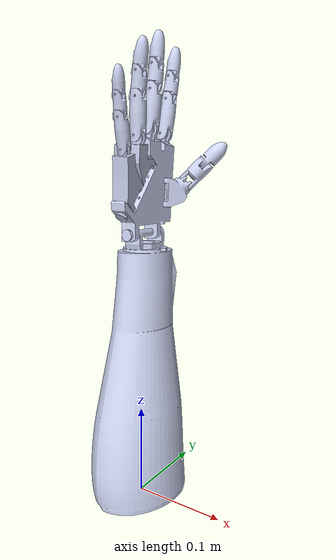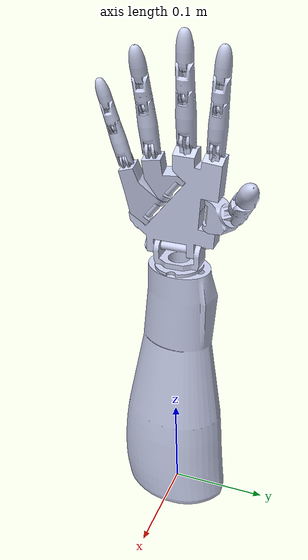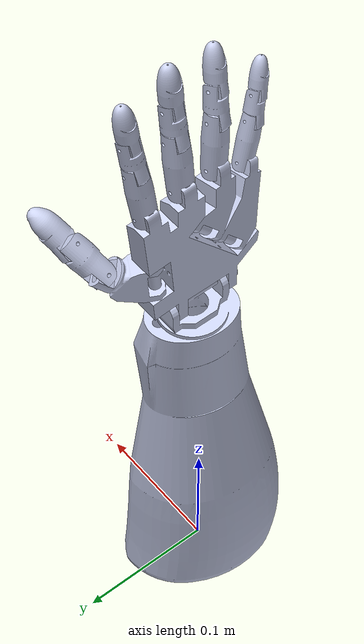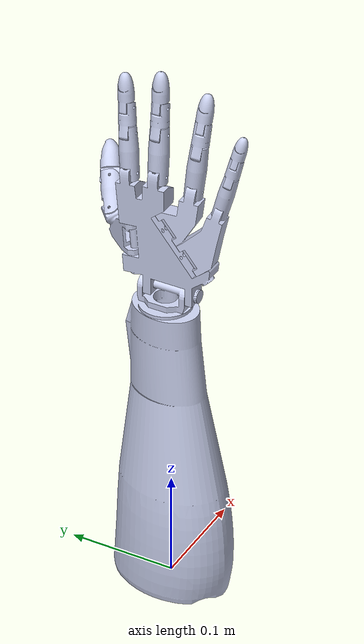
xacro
<?xml version="1.0" encoding="utf-8"?>
<robot name="smart_arm" xmlns:xacro="http://www.ros.org/wiki/xacro" >

  <link name="elbow_link">
    <inertial>
      <origin
        xyz="-0.000205770640037656 0.000108385036079905 0.103139863094332"
        rpy="0 0 0" />
      <mass
        value="0.295493853268353" />
      <inertia
        ixx="0.000483065500673909"
        ixy="-3.31332778426896E-05"
        ixz="-7.20159423734281E-07"
        iyy="0.0003469525375019"
        iyz="-3.22980553305975E-06"
        izz="0.000501419614441105" />
    </inertial>
    <visual>
      <origin
        xyz="0 0 0"
        rpy="0 0 0" />
      <geometry>
        <mesh
          filename="package://smart_arm_description/meshes/elbow_link.STL" />
      </geometry>
      <material
        name="">
        <color
          rgba="0.792156862745098 0.819607843137255 0.933333333333333 1" />
      </material>
    </visual>
    <collision>
      <origin
        xyz="0 0 0"
        rpy="0 0 0" />
      <geometry>
        <mesh
          filename="package://smart_arm_description/meshes/elbow_link.STL" />
      </geometry>
    </collision>
  </link>

  <link  name="wrist_link">
    <inertial>
      <origin
        xyz="-0.000107664352745035 -0.014691017881254 0.0475352652097448"
        rpy="0 0 0" />
      <mass
        value="0.0703349976668528" />
      <inertia
        ixx="8.33145956878074E-05"
        ixy="7.39496138280138E-08"
        ixz="3.04356429676113E-07"
        iyy="5.95941312686552E-05"
        iyz="-1.95191463116659E-05"
        izz="2.69797202551765E-05" />
    </inertial>
    <visual>
      <origin
        xyz="0 0 0"
        rpy="0 0 0" />
      <geometry>
        <mesh
          filename="package://smart_arm_description/meshes/wrist_link.STL" />
      </geometry>
      <material
        name="">
        <color
          rgba="0.792156862745098 0.819607843137255 0.933333333333333 1" />
      </material>
    </visual>
    <collision>
      <origin
        xyz="0 0 0"
        rpy="0 0 0" />
      <geometry>
        <mesh
          filename="package://smart_arm_description/meshes/wrist_link.STL" />
      </geometry>
    </collision>
  </link>

  <link name="wrist_lower_link">
    <inertial>
      <origin
        xyz="-0.0308791426702174 0.00349683553043886 0.0203486593271935"
        rpy="0 0 0" />
      <mass
        value="0.0179601480402659" />
      <inertia
        ixx="3.35618082767684E-06"
        ixy="2.00012150714684E-07"
        ixz="1.29580489766705E-06"
        iyy="4.56681598704689E-06"
        iyz="-3.93596882945118E-07"
        izz="2.21180778937816E-06" />
    </inertial>
    <visual>
      <origin
        xyz="0 0 0"
        rpy="0 0 0" />
      <geometry>
        <mesh
          filename="package://smart_arm_description/meshes/wrist_lower_link.STL" />
      </geometry>
      <material
        name="">
        <color
          rgba="0.792156862745098 0.819607843137255 0.933333333333333 1" />
      </material>
    </visual>
    <collision>
      <origin
        xyz="0 0 0"
        rpy="0 0 0" />
      <geometry>
        <mesh
          filename="package://smart_arm_description/meshes/wrist_lower_link.STL" />
      </geometry>
    </collision>
  </link>

  <link name="pinky_1_link">
    <inertial>
      <origin
        xyz="-0.00522866781159657 -0.0149787954896174 0.00244494110809049"
        rpy="0 0 0" />
      <mass
        value="0.00269063416432976" />
      <inertia
        ixx="1.20242598540253E-07"
        ixy="6.14041884687285E-12"
        ixz="5.8215008319749E-11"
        iyy="8.94283979714206E-08"
        iyz="7.05706982971785E-09"
        izz="1.37183208246673E-07" />
    </inertial>
    <visual>
      <origin
        xyz="0 0 0"
        rpy="0 0 0" />
      <geometry>
        <mesh
          filename="package://smart_arm_description/meshes/pinky_1_link.STL" />
      </geometry>
      <material
        name="">
        <color
          rgba="0.792156862745098 0.819607843137255 0.933333333333333 1" />
      </material>
    </visual>
    <collision>
      <origin
        xyz="0 0 0"
        rpy="0 0 0" />
      <geometry>
        <mesh
          filename="package://smart_arm_description/meshes/pinky_1_link.STL" />
      </geometry>
    </collision>
  </link>

  <link name="pinky_2_link">
    <inertial>
      <origin
        xyz="-0.00512598077996924 0.00901128431388447 -0.000581173891856732"
        rpy="0 0 0" />
      <mass
        value="0.00171948798725875" />
      <inertia
        ixx="4.38399098177655E-08"
        ixy="5.73443666856809E-10"
        ixz="-1.02208225680834E-10"
        iyy="3.88616206091108E-08"
        iyz="4.09208074266455E-09"
        izz="4.31403255685011E-08" />
    </inertial>
    <visual>
      <origin
        xyz="0 0 0"
        rpy="0 0 0" />
      <geometry>
        <mesh
          filename="package://smart_arm_description/meshes/pinky_2_link.STL" />
      </geometry>
      <material
        name="">
        <color
          rgba="0.792156862745098 0.819607843137255 0.933333333333333 1" />
      </material>
    </visual>
    <collision>
      <origin
        xyz="0 0 0"
        rpy="0 0 0" />
      <geometry>
        <mesh
          filename="package://smart_arm_description/meshes/pinky_2_link.STL" />
      </geometry>
    </collision>
  </link>

  <link name="pinky_3_link">
    <inertial>
      <origin
        xyz="-0.00433667543015367 0.0081019823699609 -0.00505664472792688"
        rpy="0 0 0" />
      <mass
        value="0.00142350343627245" />
      <inertia
        ixx="3.38966058052191E-08"
        ixy="-4.50552956352627E-12"
        ixz="1.68997250065103E-11"
        iyy="2.9028388995604E-08"
        iyz="4.53049886719614E-09"
        izz="2.81288327170812E-08" />
    </inertial>
    <visual>
      <origin
        xyz="0 0 0"
        rpy="0 0 0" />
      <geometry>
        <mesh
          filename="package://smart_arm_description/meshes/pinky_3_link.STL" />
      </geometry>
      <material
        name="">
        <color
          rgba="0.792156862745098 0.819607843137255 0.933333333333333 1" />
      </material>
    </visual>
    <collision>
      <origin
        xyz="0 0 0"
        rpy="0 0 0" />
      <geometry>
        <mesh
          filename="package://smart_arm_description/meshes/pinky_3_link.STL" />
      </geometry>
    </collision>
  </link>

  <link name="wrist_middle_link">
    <inertial>
      <origin
        xyz="-0.059351810470969 0.00297685937771368 0.0174911833138776"
        rpy="0 0 0" />
      <mass
        value="0.0133231625794088" />
      <inertia
        ixx="1.92896908777582E-06"
        ixy="7.95493573698368E-08"
        ixz="5.23952379047857E-07"
        iyy="2.50637427994164E-06"
        iyz="-1.97278566939604E-07"
        izz="1.29114139991389E-06" />
    </inertial>
    <visual>
      <origin
        xyz="0 0 0"
        rpy="0 0 0" />
      <geometry>
        <mesh
          filename="package://smart_arm_description/meshes/wrist_middle_link.STL" />
      </geometry>
      <material
        name="">
        <color
          rgba="0.792156862745098 0.819607843137255 0.933333333333333 1" />
      </material>
    </visual>
    <collision>
      <origin
        xyz="0 0 0"
        rpy="0 0 0" />
      <geometry>
        <mesh
          filename="package://smart_arm_description/meshes/wrist_middle_link.STL" />
      </geometry>
    </collision>
  </link>

  <link name="ring_1_link">
    <inertial>
      <origin
        xyz="-0.0062731487203958 0.0178677991712861 -0.00350735852997959"
        rpy="0 0 0" />
      <mass
        value="0.00464662723898721" />
      <inertia
        ixx="2.9890299993066E-07"
        ixy="-1.98178385884489E-11"
        ixz="-1.44064397803553E-10"
        iyy="2.23548899653077E-07"
        iyz="2.13065720147208E-08"
        izz="3.39770028839746E-07" />
    </inertial>
    <visual>
      <origin
        xyz="0 0 0"
        rpy="0 0 0" />
      <geometry>
        <mesh
          filename="package://smart_arm_description/meshes/ring_1_link.STL" />
      </geometry>
      <material
        name="">
        <color
          rgba="0.792156862745098 0.819607843137255 0.933333333333333 1" />
      </material>
    </visual>
    <collision>
      <origin
        xyz="0 0 0"
        rpy="0 0 0" />
      <geometry>
        <mesh
          filename="package://smart_arm_description/meshes/ring_1_link.STL" />
      </geometry>
    </collision>
  </link>

  <link name="ring_2_link">
    <inertial>
      <origin
        xyz="-0.00599442209155701 0.0109099257977444 -0.000450484446247124"
        rpy="0 0 0" />
      <mass
        value="0.00296941783525498" />
      <inertia
        ixx="1.09028461614364E-07"
        ixy="4.53930271304141E-12"
        ixz="-4.29160978497908E-12"
        iyy="9.46598294680744E-08"
        iyz="9.00687858749085E-09"
        izz="1.09127096165152E-07" />
    </inertial>
    <visual>
      <origin
        xyz="0 0 0"
        rpy="0 0 0" />
      <geometry>
        <mesh
          filename="package://smart_arm_description/meshes/ring_2_link.STL" />
      </geometry>
      <material
        name="">
        <color
          rgba="0.792156862745098 0.819607843137255 0.933333333333333 1" />
      </material>
    </visual>
    <collision>
      <origin
        xyz="0 0 0"
        rpy="0 0 0" />
      <geometry>
        <mesh
          filename="package://smart_arm_description/meshes/ring_2_link.STL" />
      </geometry>
    </collision>
  </link>

  <link name="ring_3_link">
    <inertial>
      <origin
        xyz="-0.00520292510737917 0.0114659419405466 -0.000387345885786594"
        rpy="0 0 0" />
      <mass
        value="0.0024583065139303" />
      <inertia
        ixx="8.42582776799548E-08"
        ixy="-3.12990012358554E-11"
        ixz="3.0662688306369E-11"
        iyy="6.18419461954836E-08"
        iyz="6.59258772398117E-09"
        izz="8.02378471172367E-08" />
    </inertial>
    <visual>
      <origin
        xyz="0 0 0"
        rpy="0 0 0" />
      <geometry>
        <mesh
          filename="package://smart_arm_description/meshes/ring_3_link.STL" />
      </geometry>
      <material
        name="">
        <color
          rgba="0.792156862745098 0.819607843137255 0.933333333333333 1" />
      </material>
    </visual>
    <collision>
      <origin
        xyz="0 0 0"
        rpy="0 0 0" />
      <geometry>
        <mesh
          filename="package://smart_arm_description/meshes/ring_3_link.STL" />
      </geometry>
    </collision>
  </link>

  <link name="wrist_upper_link">
    <inertial>
      <origin
        xyz="-0.0366550772980235 0.00764946692547766 -0.0140269197547968"
        rpy="0 0 0" />
      <mass
        value="0.0103243269131143" />
      <inertia
        ixx="7.48338998818573E-07"
        ixy="-4.20182846150398E-08"
        ixz="6.08546051037344E-08"
        iyy="1.06628115984118E-06"
        iyz="6.39209500929198E-08"
        izz="9.79175522091434E-07" />
    </inertial>
    <visual>
      <origin
        xyz="0 0 0"
        rpy="0 0 0" />
      <geometry>
        <mesh
          filename="package://smart_arm_description/meshes/wrist_upper_link.STL" />
      </geometry>
      <material
        name="">
        <color
          rgba="0.792156862745098 0.819607843137255 0.933333333333333 1" />
      </material>
    </visual>
    <collision>
      <origin
        xyz="0 0 0"
        rpy="0 0 0" />
      <geometry>
        <mesh
          filename="package://smart_arm_description/meshes/wrist_upper_link.STL" />
      </geometry>
    </collision>
  </link>

  <link  name="thumb_1_link">
    <inertial>
      <origin
        xyz="-0.00733195290859857 0.0123357237864767 0.0124289912891914"
        rpy="0 0 0" />
      <mass
        value="0.00578742546735096" />
      <inertia
        ixx="2.9022059126798E-07"
        ixy="-9.85448053363409E-14"
        ixz="-4.41249917228209E-13"
        iyy="3.54248074807296E-07"
        iyz="-1.93352692370391E-08"
        izz="3.54050996721444E-07" />
    </inertial>
    <visual>
      <origin
        xyz="0 0 0"
        rpy="0 0 0" />
      <geometry>
        <mesh
          filename="package://smart_arm_description/meshes/thumb_1_link.STL" />
      </geometry>
      <material
        name="">
        <color
          rgba="0.792156862745098 0.819607843137255 0.933333333333333 1" />
      </material>
    </visual>
    <collision>
      <origin
        xyz="0 0 0"
        rpy="0 0 0" />
      <geometry>
        <mesh
          filename="package://smart_arm_description/meshes/thumb_1_link.STL" />
      </geometry>
    </collision>
  </link>

  <link  name="thumb_2_link">
    <inertial>
      <origin
        xyz="-0.0064568457068869 0.0102775150349664 0.00846428836658635"
        rpy="0 0 0" />
      <mass
        value="0.00408607534767685" />
      <inertia
        ixx="1.95951404716398E-07"
        ixy="-7.73858676630385E-11"
        ixz="1.1896278633326E-10"
        iyy="1.85983967135428E-07"
        iyz="-8.26602224548752E-09"
        izz="1.61404176202361E-07" />
    </inertial>
    <visual>
      <origin
        xyz="0 0 0"
        rpy="0 0 0" />
      <geometry>
        <mesh
          filename="package://smart_arm_description/meshes/thumb_2_link.STL" />
      </geometry>
      <material
        name="">
        <color
          rgba="0.792156862745098 0.819607843137255 0.933333333333333 1" />
      </material>
    </visual>
    <collision>
      <origin
        xyz="0 0 0"
        rpy="0 0 0" />
      <geometry>
        <mesh
          filename="package://smart_arm_description/meshes/thumb_2_link.STL" />
      </geometry>
    </collision>
  </link>

  <link name="middle_1_link">
    <inertial>
      <origin
        xyz="-0.00703243450935939 0.0173092705097653 -0.00798548069738481"
        rpy="0 0 0" />
      <mass
        value="0.00545625911917495" />
      <inertia
        ixx="3.90612953769099E-07"
        ixy="1.77980873893174E-09"
        ixz="-1.58816562130274E-09"
        iyy="3.1304155537832E-07"
        iyz="5.91881896575937E-08"
        izz="4.23235427455386E-07" />
    </inertial>
    <visual>
      <origin
        xyz="0 0 0"
        rpy="0 0 0" />
      <geometry>
        <mesh
          filename="package://smart_arm_description/meshes/middle_1_link.STL" />
      </geometry>
      <material
        name="">
        <color
          rgba="0.792156862745098 0.819607843137255 0.933333333333333 1" />
      </material>
    </visual>
    <collision>
      <origin
        xyz="0 0 0"
        rpy="0 0 0" />
      <geometry>
        <mesh
          filename="package://smart_arm_description/meshes/middle_1_link.STL" />
      </geometry>
    </collision>
  </link>

  <link name="middle_2_link">
    <inertial>
      <origin
        xyz="-0.00632415038644278 0.0115147576834888 -0.000333232809120232"
        rpy="0 0 0" />
      <mass
        value="0.00348681254392789" />
      <inertia
        ixx="1.42495803409043E-07"
        ixy="6.42083738917761E-12"
        ixz="-5.66128771526002E-12"
        iyy="1.23428871201468E-07"
        iyz="1.15346629665482E-08"
        izz="1.42912538138573E-07" />
    </inertial>
    <visual>
      <origin
        xyz="0 0 0"
        rpy="0 0 0" />
      <geometry>
        <mesh
          filename="package://smart_arm_description/meshes/middle_2_link.STL" />
      </geometry>
      <material
        name="">
        <color
          rgba="0.792156862745098 0.819607843137255 0.933333333333333 1" />
      </material>
    </visual>
    <collision>
      <origin
        xyz="0 0 0"
        rpy="0 0 0" />
      <geometry>
        <mesh
          filename="package://smart_arm_description/meshes/middle_2_link.STL" />
      </geometry>
    </collision>
  </link>

  <link name="middle_3_link">
    <inertial>
      <origin
        xyz="-0.00548902061454014 0.0100923850151921 -0.00665149126059028"
        rpy="0 0 0" />
      <mass
        value="0.00288658168120279" />
      <inertia
        ixx="1.10117727071997E-07"
        ixy="-1.55534443640183E-11"
        ixz="5.61060631121711E-11"
        iyy="9.50345739683847E-08"
        iyz="1.46269472075257E-08"
        izz="9.06531551883444E-08" />
    </inertial>
    <visual>
      <origin
        xyz="0 0 0"
        rpy="0 0 0" />
      <geometry>
        <mesh
          filename="package://smart_arm_description/meshes/middle_3_link.STL" />
      </geometry>
      <material
        name="">
        <color
          rgba="0.792156862745098 0.819607843137255 0.933333333333333 1" />
      </material>
    </visual>
    <collision>
      <origin
        xyz="0 0 0"
        rpy="0 0 0" />
      <geometry>
        <mesh
          filename="package://smart_arm_description/meshes/middle_3_link.STL" />
      </geometry>
    </collision>
  </link>

  <link name="pointer_1_link">
    <inertial>
      <origin
        xyz="-0.00627312732951361 0.018037978572514 -0.00248821637768416"
        rpy="0 0 0" />
      <mass
        value="0.00464662673165044" />
      <inertia
        ixx="2.98902869571704E-07"
        ixy="-1.18788072621608E-11"
        ixz="-1.45887482548079E-10"
        iyy="2.21509520954101E-07"
        iyz="1.45876954431312E-08"
        izz="3.41809156243113E-07" />
    </inertial>
    <visual>
      <origin
        xyz="0 0 0"
        rpy="0 0 0" />
      <geometry>
        <mesh
          filename="package://smart_arm_description/meshes/pointer_1_link.STL" />
      </geometry>
      <material
        name="">
        <color
          rgba="0.792156862745098 0.819607843137255 0.933333333333333 1" />
      </material>
    </visual>
    <collision>
      <origin
        xyz="0 0 0"
        rpy="0 0 0" />
      <geometry>
        <mesh
          filename="package://smart_arm_description/meshes/pointer_1_link.STL" />
      </geometry>
    </collision>
  </link>

  <link name="pointer_2_link">
    <inertial>
      <origin
        xyz="-0.0059944646707981 0.00717574917314355 -0.0082394598299626"
        rpy="0 0 0" />
      <mass
        value="0.00296942129713921" />
      <inertia
        ixx="1.0902878077867E-07"
        ixy="4.47795663836142E-15"
        ixz="-6.6980448986755E-12"
        iyy="1.113024196947E-07"
        iyz="6.70365289571796E-09"
        izz="9.24850503494116E-08" />
    </inertial>
    <visual>
      <origin
        xyz="0 0 0"
        rpy="0 0 0" />
      <geometry>
        <mesh
          filename="package://smart_arm_description/meshes/pointer_2_link.STL" />
      </geometry>
      <material
        name="">
        <color
          rgba="0.792156862745098 0.819607843137255 0.933333333333333 1" />
      </material>
    </visual>
    <collision>
      <origin
        xyz="0 0 0"
        rpy="0 0 0" />
      <geometry>
        <mesh
          filename="package://smart_arm_description/meshes/pointer_2_link.STL" />
      </geometry>
    </collision>
  </link>

  <link  name="pointer_3_link">
    <inertial>
      <origin
        xyz="-0.00520292179493784 0.0114659401260275 -0.000387354590101002"
        rpy="0 0 0" />
      <mass
        value="0.00245831065780538" />
      <inertia
        ixx="8.42585897088902E-08"
        ixy="-3.12989101832727E-11"
        ixz="3.05696947302691E-11"
        iyy="6.18419051405367E-08"
        iyz="6.59275537894209E-09"
        izz="8.02382050859085E-08" />
    </inertial>
    <visual>
      <origin
        xyz="0 0 0"
        rpy="0 0 0" />
      <geometry>
        <mesh
          filename="package://smart_arm_description/meshes/pointer_3_link.STL" />
      </geometry>
      <material
        name="">
        <color
          rgba="0.792156862745098 0.819607843137255 0.933333333333333 1" />
      </material>
    </visual>
    <collision>
      <origin
        xyz="0 0 0"
        rpy="0 0 0" />
      <geometry>
        <mesh
          filename="package://smart_arm_description/meshes/pointer_3_link.STL" />
      </geometry>
    </collision>
  </link>

  <xacro:property name="very_small_limit" value="-0.1"/>
  <xacro:property name="proximal_finger_joint_limit" value="1.5707"/>
  <xacro:property name="middle_finger_joint_limit" value="1.3707"/>
  <xacro:property name="distal_finger_joint_limit" value="1.2707"/>

  <joint name="wrist_joint" type="revolute">
    <origin
      xyz="0.00129 0.029395 0.2989"
      rpy="0 0 0" />
    <parent
      link="elbow_link" />
    <child
      link="wrist_link" />
    <axis
      xyz="0 1 0" />
    <limit
      lower="-0.872665"
      upper="0.872665"
      effort="5"
      velocity="1" />
  </joint>

  <joint name="wrist_upper_joint" type="revolute">
    <origin
      xyz="0 0.00467160843217863 0.00716947951775644"
      rpy="0 1.48772480012052 -1.5707963267949" />
    <parent
      link="wrist_link" />
    <child
      link="wrist_upper_link" />
    <axis
      xyz="1 0 0" />
    <limit
      lower="${very_small_limit}"
      upper="0.872665"
      effort="5"
      velocity="3" />
  </joint>

  <joint name="wrist_middle_joint" type="revolute">
    <origin
      xyz="0 -0.063543 0.017875"
      rpy="0 0.88169 -1.5708" />
    <parent
      link="wrist_link" />
    <child
      link="wrist_middle_link" />
    <axis
      xyz="-1 0 0" />
    <limit
      lower="${very_small_limit}"
      upper="${-very_small_limit}"
      effort="5"
      velocity="2" />
  </joint>

  <joint name="wrist_lower_joint" type="revolute">
    <origin
      xyz="0 -0.063543 0.017875"
      rpy="0 0.88169 -1.5708" />
    <parent
      link="wrist_link" />
    <child
      link="wrist_lower_link" />
    <axis
      xyz="-1 0 0" />
    <limit
      lower="${very_small_limit}"
      upper="${-very_small_limit}"
      effort="5"
      velocity="5" />
  </joint>

  <joint name="thumb_1_joint" type="revolute">
    <origin
      xyz="-0.041192 0.017697 -0.032051"
      rpy="-1 0.31508 0.77256" />
    <parent
      link="wrist_upper_link" />
    <child
      link="thumb_1_link" />
    <axis
      xyz="1 0 0" />
    <limit
      lower="${very_small_limit}"
      upper="0.8720"
      effort="5"
      velocity="4" />
  </joint>

  <joint name="thumb_2_joint" type="revolute">
    <origin
      xyz="-0.000865682899112985 0.0214109109835155 0.0182563649065549"
      rpy="0 0 0" />
    <parent
      link="thumb_1_link" />
    <child
      link="thumb_2_link" />
    <axis
      xyz="1 0 0" />
    <limit
      lower="${very_small_limit}"
      upper="1.39626"
      effort="5"
      velocity="4" />
  </joint>

  <joint name="pinky_1_joint" type="revolute">
    <origin
      xyz="-0.043751 0.0091577 0.05009"
      rpy="-1.5908 -0.61679 0.12536" />
    <parent
      link="wrist_lower_link" />
    <child
      link="pinky_1_link" />
    <axis
      xyz="-1 0 0" />
    <limit
      lower="${very_small_limit}"
      upper="${proximal_finger_joint_limit}"
      effort="5"
      velocity="2" />
  </joint>

  <joint name="pinky_2_joint" type="revolute">
    <origin
      xyz="-0.00023197 -0.029503 0.0045349"
      rpy="3.226 0.13765 -0.015931" />
    <parent
      link="pinky_1_link" />
    <child
      link="pinky_2_link" />
    <axis
      xyz="-1 0 0" />
    <limit
      lower="${very_small_limit}"
      upper="${middle_finger_joint_limit}"
      effort="5"
      velocity="3" />
  </joint>

  <joint name="pinky_3_joint" type="revolute">
    <origin
      xyz="-0.0011308 0.018906 -0.0033205"
      rpy="0.24361 0.13856 0" />
    <parent
      link="pinky_2_link" />
    <child
      link="pinky_3_link" />
    <axis
      xyz="-1 0 0" />
    <limit
      lower="${very_small_limit}"
      upper="${distal_finger_joint_limit}"
      effort="5"
      velocity="2" />
  </joint>

  <joint name="ring_1_joint" type="revolute">
    <origin
      xyz="-0.069801 0.0076347 0.041426"
      rpy="1.5238 -0.78078 0.17561" />
    <parent
      link="wrist_middle_link" />
    <child
      link="ring_1_link" />
    <axis
      xyz="-1 0 0" />
    <limit
      lower="${very_small_limit}"
      upper="${proximal_finger_joint_limit}"
      effort="5"
      velocity="2" />
  </joint>

  <joint name="ring_2_joint" type="revolute">
    <origin
      xyz="-0.00027831 0.035204 -0.0065715"
      rpy="-0.08653 0 0" />
    <parent
      link="ring_1_link" />
    <child
      link="ring_2_link" />
    <axis
      xyz="-1 0 0" />
    <limit
      lower="${very_small_limit}"
      upper="${middle_finger_joint_limit}"
      effort="5"
      velocity="2" />
  </joint>

  <joint name="ring_3_joint" type="revolute">
    <origin
      xyz="-0.000793430469754296 0.0229811955997807 -0.00184137348495991"
      rpy="-0.183278724594159 0 0" />
    <parent
      link="ring_2_link" />
    <child
      link="ring_3_link" />
    <axis
      xyz="-1 0 0" />
    <limit
      lower="${very_small_limit}"
      upper="${distal_finger_joint_limit}"
      effort="5"
      velocity="2" />
  </joint>

  <joint name="middle_1_joint" type="revolute">
    <origin
      xyz="0.000525788242336553 -0.0208949853387586 0.107469880482186"
      rpy="1.8507963267949 0 -1.5707963267949" />
    <parent
      link="wrist_link" />
    <child
      link="middle_1_link" />
    <axis
      xyz="-1 0 0" />
    <limit
      lower="${very_small_limit}"
      upper="${proximal_finger_joint_limit}"
      effort="5"
      velocity="5" />
  </joint>

  <joint name="middle_2_joint"  type="revolute">
    <origin
      xyz="-0.0011154 0.03449 -0.015386"
      rpy="-0.2614 0 0.023821" />
    <parent
      link="middle_1_link" />
    <child
      link="middle_2_link" />
    <axis
      xyz="-1 0 0" />
    <limit
      lower="${very_small_limit}"
      upper="${middle_finger_joint_limit}"
      effort="5"
      velocity="4" />
  </joint>

  <joint name="middle_3_joint" type="revolute">
    <origin
      xyz="-0.00083707 0.024267 -0.0016433"
      rpy="0.45093 0 0" />
    <parent
      link="middle_2_link" />
    <child
      link="middle_3_link" />
    <axis
      xyz="-1 0 0" />
    <limit
      lower="${very_small_limit}"
      upper="${distal_finger_joint_limit}"
      effort="4"
      velocity="5" />
  </joint>

  <joint name="pointer_1_joint" type="revolute">
    <origin
      xyz="0.000525021796397782 0.00639325128397639 0.103423200281556"
      rpy="1.5707963267949 -0.0968623019535048 -1.5707963267949" />
    <parent
      link="wrist_link" />
    <child
      link="pointer_1_link" />
    <axis
      xyz="-1 0 0" />
    <limit
      lower="${very_small_limit}"
      upper="${proximal_finger_joint_limit}"
      effort="5"
      velocity="2" />
  </joint>

  <joint name="pointer_2_joint" type="revolute">
    <origin
      xyz="-0.00027831 0.03552 -0.0045641"
      rpy="0.840000 0 0" />
    <parent
      link="pointer_1_link" />
    <child
      link="pointer_2_link" />
    <axis
      xyz="-1 0 0" />
    <limit
      lower="${very_small_limit}"
      upper="${middle_finger_joint_limit}"
      effort="5"
      velocity="3" />
  </joint>

  <joint name="pointer_3_joint" type="revolute">
    <origin
      xyz="-0.00079343 0.014451 -0.017972"
      rpy="-0.91742 0 0" />
    <parent
      link="pointer_2_link" />
    <child
      link="pointer_3_link" />
    <axis
      xyz="-1 0 0" />
    <limit
      lower="${very_small_limit}"
      upper="${distal_finger_joint_limit}"
      effort="5"
      velocity="2" />
  </joint>

</robot>
